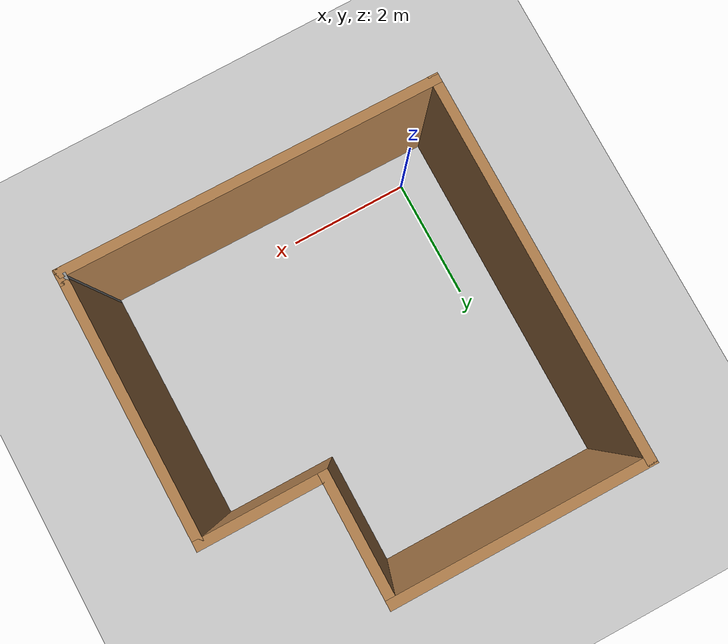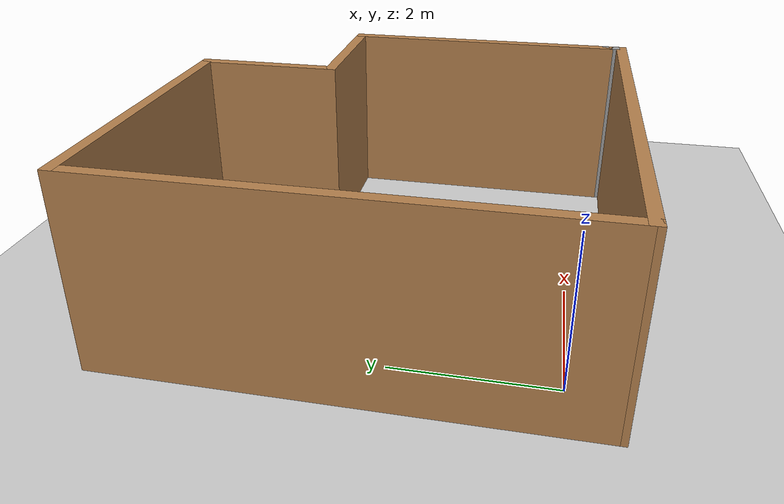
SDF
<?xml version="1.0"?>

<sdf version="1.5">
    <world name="default">
        <!-- A global light source -->
        <include>
            <uri>model://sun</uri>
        </include>

        <!-- A ground plane -->
        <include>
            <uri>model://ground_plane</uri>
        </include>
        <include>
            <uri>model://wall</uri>
        </include>
    </world>
</sdf>

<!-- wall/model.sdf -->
<sdf version='1.7'>
  <model name='wall'>
    <pose>2.201278 2.616457 0 0 -0 0</pose>
    <link name='Wall_10'>
      <collision name='Wall_10_Collision'>
        <geometry>
          <box>
            <size>2 0.15 2.5</size>
          </box>
        </geometry>
        <pose>0 0 1.25 0 -0 0</pose>
      </collision>
      <visual name='Wall_10_Visual'>
        <pose>0 0 1.25 0 -0 0</pose>
        <geometry>
          <box>
            <size>2 0.15 2.5</size>
          </box>
        </geometry>
        <material>
          <script>
            <uri>file://media/materials/scripts/gazebo.material</uri>
            <name>Gazebo/Wood</name>
          </script>
          <ambient>1 1 1 1</ambient>
        </material>
        <meta>
          <layer>0</layer>
        </meta>
      </visual>
      <pose>1.925 0.831305 0 0 -0 0</pose>
    </link>
    <link name='Wall_11'>
      <collision name='Wall_11_Collision'>
        <geometry>
          <box>
            <size>4 0.15 2.5</size>
          </box>
        </geometry>
        <pose>0 0 1.25 0 -0 0</pose>
      </collision>
      <visual name='Wall_11_Visual'>
        <pose>0 0 1.25 0 -0 0</pose>
        <geometry>
          <box>
            <size>4 0.15 2.5</size>
          </box>
        </geometry>
        <material>
          <script>
            <uri>file://media/materials/scripts/gazebo.material</uri>
            <name>Gazebo/Wood</name>
          </script>
          <ambient>1 1 1 1</ambient>
        </material>
        <meta>
          <layer>0</layer>
        </meta>
      </visual>
      <pose>2.85 -1.0937 0 0 -0 -1.5708</pose>
    </link>
    <link name='Wall_12'>
      <collision name='Wall_12_Collision'>
        <geometry>
          <box>
            <size>0.25 0.15 2.5</size>
          </box>
        </geometry>
        <pose>0 0 1.25 0 -0 0</pose>
      </collision>
      <visual name='Wall_12_Visual'>
        <pose>0 0 1.25 0 -0 0</pose>
        <geometry>
          <box>
            <size>0.25 0.15 2.5</size>
          </box>
        </geometry>
        <material>
          <script>
            <uri>file://media/materials/scripts/gazebo.material</uri>
            <name>Gazebo/Grey</name>
          </script>
          <ambient>1 1 1 1</ambient>
        </material>
        <meta>
          <layer>0</layer>
        </meta>
      </visual>
      <pose>2.85 -3.06869 0 0 -0 -1.5708</pose>
    </link>
    <link name='Wall_13'>
      <collision name='Wall_13_Collision'>
        <geometry>
          <box>
            <size>0.25 0.15 2.5</size>
          </box>
        </geometry>
        <pose>0 0 1.25 0 -0 0</pose>
      </collision>
      <visual name='Wall_13_Visual'>
        <pose>0 0 1.25 0 -0 0</pose>
        <geometry>
          <box>
            <size>0.25 0.15 2.5</size>
          </box>
        </geometry>
        <material>
          <script>
            <uri>file://media/materials/scripts/gazebo.material</uri>
            <name>Gazebo/Wood</name>
          </script>
          <ambient>1 1 1 1</ambient>
        </material>
        <meta>
          <layer>0</layer>
        </meta>
      </visual>
      <pose>2.85 -3.16869 0 0 -0 -1.5708</pose>
    </link>
    <link name='Wall_14'>
      <collision name='Wall_14_Collision'>
        <geometry>
          <box>
            <size>5.85022 0.15 2.5</size>
          </box>
        </geometry>
        <pose>0 0 1.25 0 -0 0</pose>
      </collision>
      <visual name='Wall_14_Visual'>
        <pose>0 0 1.25 0 -0 0</pose>
        <geometry>
          <box>
            <size>5.85022 0.15 2.5</size>
          </box>
        </geometry>
        <material>
          <script>
            <uri>file://media/materials/scripts/gazebo.material</uri>
            <name>Gazebo/Wood</name>
          </script>
          <ambient>1 1 1 1</ambient>
        </material>
        <meta>
          <layer>0</layer>
        </meta>
      </visual>
      <pose>-0 -3.19369 0 0 -0 3.13282</pose>
    </link>
    <link name='Wall_7'>
      <collision name='Wall_7_Collision'>
        <geometry>
          <box>
            <size>6 0.15 2.5</size>
          </box>
        </geometry>
        <pose>0 0 1.25 0 -0 0</pose>
      </collision>
      <visual name='Wall_7_Visual'>
        <pose>0 0 1.25 0 -0 0</pose>
        <geometry>
          <box>
            <size>6 0.15 2.5</size>
          </box>
        </geometry>
        <material>
          <script>
            <uri>file://media/materials/scripts/gazebo.material</uri>
            <name>Gazebo/Wood</name>
          </script>
          <ambient>1 1 1 1</ambient>
        </material>
        <meta>
          <layer>0</layer>
        </meta>
      </visual>
      <pose>-2.85 -0.243695 0 0 -0 1.5708</pose>
    </link>
    <link name='Wall_8'>
      <collision name='Wall_8_Collision'>
        <geometry>
          <box>
            <size>4 0.15 2.5</size>
          </box>
        </geometry>
        <pose>0 0 1.25 0 -0 0</pose>
      </collision>
      <visual name='Wall_8_Visual'>
        <pose>0 0 1.25 0 -0 0</pose>
        <geometry>
          <box>
            <size>4 0.15 2.5</size>
          </box>
        </geometry>
        <material>
          <script>
            <uri>file://media/materials/scripts/gazebo.material</uri>
            <name>Gazebo/Wood</name>
          </script>
          <ambient>1 1 1 1</ambient>
        </material>
        <meta>
          <layer>0</layer>
        </meta>
      </visual>
      <pose>-0.925 2.68131 0 0 -0 0</pose>
    </link>
    <link name='Wall_9'>
      <collision name='Wall_9_Collision'>
        <geometry>
          <box>
            <size>2 0.15 2.5</size>
          </box>
        </geometry>
        <pose>0 0 1.25 0 -0 0</pose>
      </collision>
      <visual name='Wall_9_Visual'>
        <pose>0 0 1.25 0 -0 0</pose>
        <geometry>
          <box>
            <size>2 0.15 2.5</size>
          </box>
        </geometry>
        <material>
          <script>
            <uri>file://media/materials/scripts/gazebo.material</uri>
            <name>Gazebo/Wood</name>
          </script>
          <ambient>1 1 1 1</ambient>
        </material>
        <meta>
          <layer>0</layer>
        </meta>
      </visual>
      <pose>1 1.75631 0 0 -0 -1.5708</pose>
    </link>
    <static>1</static>
  </model>
</sdf>
